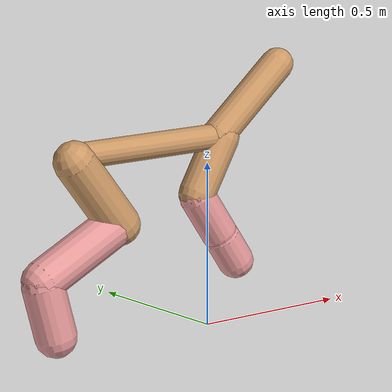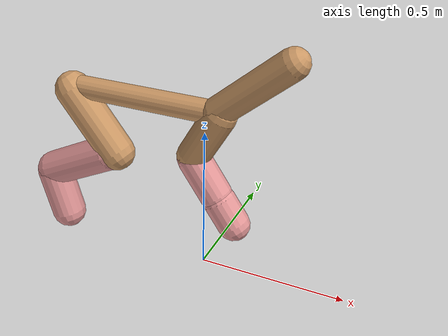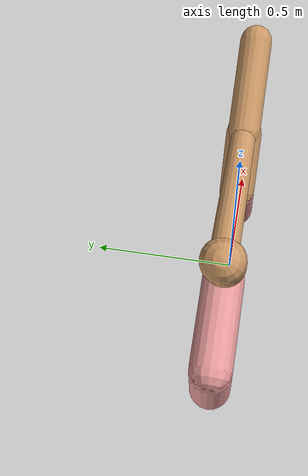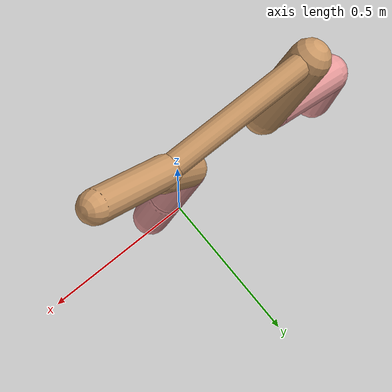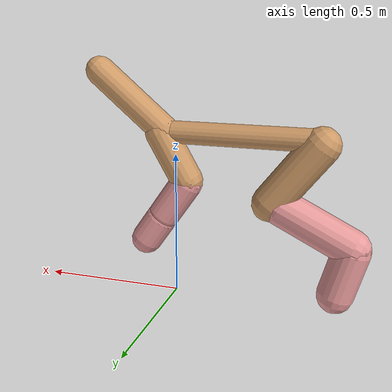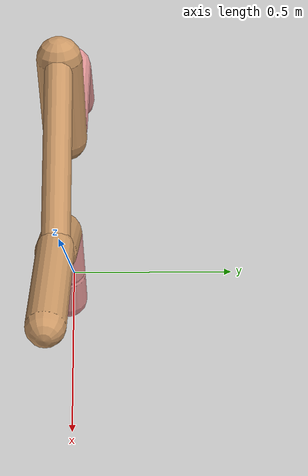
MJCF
<mujoco model="cheetah">
  <compiler angle="radian" coordinate="local" inertiafromgeom="true" settotalmass="14" />
  <default>
    <joint armature=".1" damping=".01" limited="true" solimplimit="0 .8 .03" solreflimit=".02 1" stiffness="8" />
    <geom conaffinity="0" condim="3" contype="1" friction="0.8 .1 .1" rgba="0.8 0.6 .4 1" solimp="0.0 0.8 0.01" solref="0.02 1" />
    <motor ctrllimited="true" ctrlrange="-1 1" />
  </default>
  <size nstack="300000" nuser_geom="1" />
  <option gravity="0 0 -9.81" timestep="0.01" />
  <worldbody>
    <body name="torso" pos="0.0 0.0 0.5768116541654746">
      <joint armature="0" axis="1 0 0" damping="0" limited="false" name="ignorex" pos="0 0 0" stiffness="0" type="slide" />
      <joint armature="0" axis="0 0 1" damping="0" limited="false" name="ignorez" pos="0 0 0" stiffness="0" type="slide" />
      <joint armature="0" axis="0 1 0" damping="0" limited="false" name="ignorey" pos="0 0 0" stiffness="0" type="hinge" />
      <geom fromto="-0.5 0.0 0.0 0.05634562352367517 0.0 0.0" name="torso" size="0.038878576515753105" type="capsule" />
      <geom axisangle="0 1 0 .87" name="head" pos="0.1563456235236752 0.0 0.1" size="0.049889833861526456 0.15" type="capsule" />

      <body name="bthigh" pos="-.5 0 0">
        <joint axis="0 1 0" damping="6" name="bthigh" pos="0 0 0" range="-.52 1.05" stiffness="240" type="hinge" />
        <geom axisangle="0 1 0 -3.8" name="bthigh" pos="0.09077047227995373 0.0 -0.11800161396393985" size="0.06292170634077061 0.12986244902880834" type="capsule" />
        <body name="bshin" pos="0.14154094455990746 0.0 -0.2260032279278797">
          <joint axis="0 1 0" damping="4.5" name="bshin" pos="0 0 0" range="-.785 .785" stiffness="180" type="hinge" />
          <geom axisangle="0 1 0 -2.03" name="bshin" pos="-0.12599368566160585 0.0 -0.06299684283080292" rgba="0.9 0.6 0.6 1" size="0.06292170634077061 0.13434046451256035" type="capsule" />
          <body name="bfoot" pos="-0.2519873713232117 0.0 -0.12599368566160585">
            <joint axis="0 1 0" damping="3" name="bfoot" pos="0 0 0" range="-.4 .785" stiffness="120" type="hinge" />
            <geom axisangle="0 1 0 -.27" name="bfoot" pos="0.027100464336754428 0.0 -0.08762483468883932" rgba="0.9 0.6 0.6 1" size="0.06292170634077061 0.08418669109453782" type="capsule" />
            <inertial mass="10" />
          </body>
        </body>
      </body>
      <body name="fthigh" pos="0.056345623523675226 0.0 0.0">
        <joint axis="0 1 0" damping="4.5" name="fthigh" pos="0 0 0" range="-1.5 0.8" stiffness="180" type="hinge" />
        <geom axisangle="0 1 0 .52" name="fthigh" pos="-0.04989554608158897 0.0 -0.0855352218541525" size="0.055389162303010143 0.0931" type="capsule" />
        <body name="fshin" pos="-0.09979109216317794 0.0 -0.171070443708305">
          <joint axis="0 1 0" damping="3" name="fshin" pos="0 0 0" range="-1.2 1.1" stiffness="120" type="hinge" />
          <geom axisangle="0 1 0 -.6" name="fshin" pos="0.046381400387749405 0.0 -0.06422040053688378" rgba="0.9 0.6 0.6 1" size="0.055389162303010143 0.07419999999999999" type="capsule" />
          <body name="ffoot" pos="0.09276280077549881 0.0 -0.12844080107376757">
            <joint axis="0 1 0" damping="1.5" name="ffoot" pos="0 0 0" range="-3.1 -0.3" stiffness="60" type="hinge" />
            <geom axisangle="0 1 0 -.6" name="ffoot" pos="0.033644090582416526 0.0 -0.05233525201709238" rgba="0.9 0.6 0.6 1" size="0.055389162303010143 0.049" type="capsule" />
            <inertial mass="10" />
          </body>
        </body>
      </body>
    </body>
  </worldbody>
  <actuator>
    <motor gear="120" joint="bthigh" name="bthigh" />
    <motor gear="90" joint="bshin" name="bshin" />
    <motor gear="60" joint="bfoot" name="bfoot" />
    <motor gear="120" joint="fthigh" name="fthigh" />
    <motor gear="60" joint="fshin" name="fshin" />
    <motor gear="30" joint="ffoot" name="ffoot" />
  </actuator>
</mujoco>
